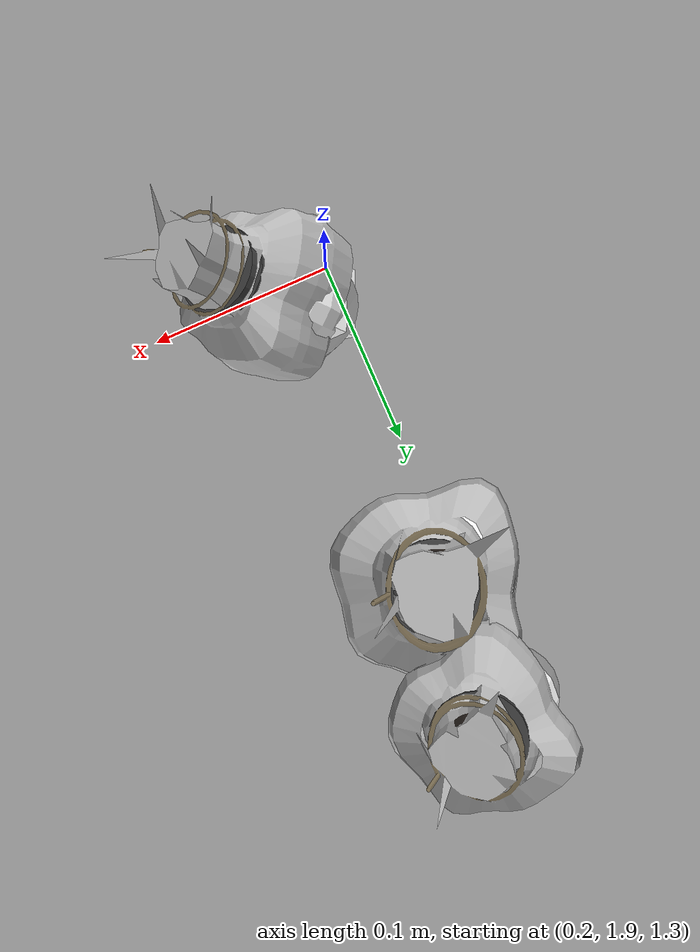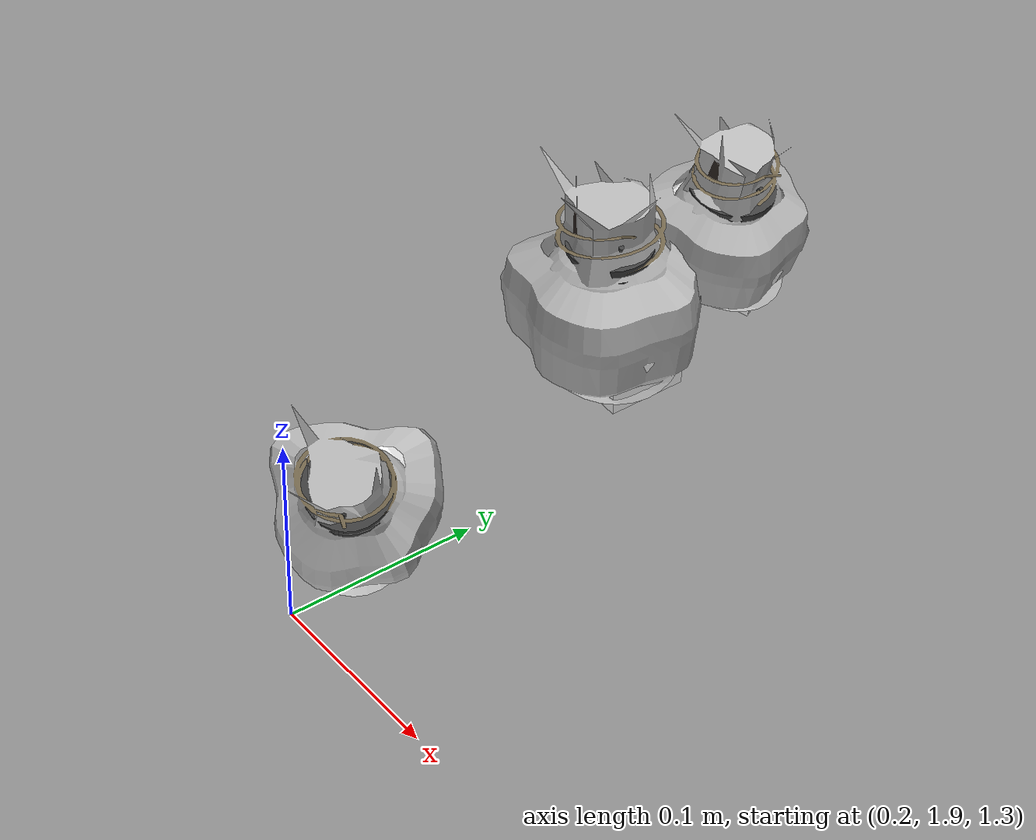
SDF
<sdf version="1.11">
 <world name="peach_orchard">
  <model name="ground">
   <static>true</static>
   <link name="link">
    <visual name="soil">
     <geometry><plane><normal>0 0 1</normal><size>32 22</size></plane></geometry>
     <material>
      <ambient>1 1 1 1</ambient>
      <diffuse>1 1 1 1</diffuse>
      <specular>0.1 0.1 0.1 1</specular>
      <pbr>
       <metal>
        <albedo_map>textures/soil_albedo.png</albedo_map>
        <normal_map type="tangent">textures/soil_normal.png</normal_map>
        <roughness>0.95</roughness>
        <metalness>0</metalness>
       </metal>
      </pbr>
     </material>
    </visual>
    <collision name="c_soil">
     <geometry><plane><normal>0 0 1</normal><size>32 22</size></plane></geometry>
    </collision>
   </link>
  </model>
  <model name="peach_tree_r2_t4_03">
   <pose>0.22 2.06523 1.38213 0 0.0262122 -0.358318</pose>
   <static>true</static>
   <link name="bag">
    <visual name="bag_mesh">
     <pose>0 0 0.0473034 0 0 -0</pose>
     <geometry>
      <mesh><uri>model://peach_sim/meshes/bagged_peach.glb</uri><scale>1.05412 1.30614 1.07508</scale></mesh>
     </geometry>
    </visual>
    <visual name="body">
     <pose>0 0 0.0293034 0 0 0</pose>
     <geometry><ellipsoid><radii>0.0395294 0.0339596 0.0316477</radii></ellipsoid></geometry>
     <material>
      <ambient>1 1 1 1</ambient>
      <diffuse>1 1 1 1</diffuse>
      <specular>0.1 0.1 0.1 1</specular>
      <pbr>
       <metal>
        <albedo_map>textures/paper_bag_albedo.png</albedo_map>
        <normal_map type="tangent">textures/paper_bag_normal.png</normal_map>
        <roughness>0.72</roughness>
        <metalness>0</metalness>
       </metal>
      </pbr>
     </material>
    </visual>
    <visual name="bottom_fold">
     <pose>0 0 0.012 0 0 0.35</pose>
     <geometry><box><size>0.0612705 0.0390536 0.022</size></box></geometry>
     <material>
      <ambient>1 1 1 1</ambient>
      <diffuse>1 1 1 1</diffuse>
      <specular>0.1 0.1 0.1 1</specular>
      <pbr>
       <metal>
        <albedo_map>textures/paper_bag_albedo.png</albedo_map>
        <normal_map type="tangent">textures/paper_bag_normal.png</normal_map>
        <roughness>0.8</roughness>
        <metalness>0</metalness>
       </metal>
      </pbr>
     </material>
    </visual>
    <visual name="fruit">
     <pose>0 0 0.0215119 0 0 0</pose>
     <geometry><sphere><radius>0.0286124</radius></sphere></geometry>
     <material>
      <ambient>1 1 1 1</ambient>
      <diffuse>1 1 1 1</diffuse>
      <specular>0.1 0.1 0.1 1</specular>
      <pbr>
       <metal>
        <albedo_map>textures/fruit_skin_albedo.png</albedo_map>
        <normal_map type="tangent">textures/fruit_skin_normal.png</normal_map>
        <roughness>0.55</roughness>
        <metalness>0</metalness>
       </metal>
      </pbr>
     </material>
    </visual>
    <visual name="neck">
     <pose>0 0 0.0676069 0 0 0</pose>
     <geometry><cylinder><radius>0.013</radius><length>0.018</length></cylinder></geometry>
     <material>
      <ambient>1 1 1 1</ambient>
      <diffuse>1 1 1 1</diffuse>
      <specular>0.1 0.1 0.1 1</specular>
      <pbr>
       <metal>
        <albedo_map>textures/paper_bag_albedo.png</albedo_map>
        <normal_map type="tangent">textures/paper_bag_normal.png</normal_map>
        <roughness>0.75</roughness>
        <metalness>0</metalness>
       </metal>
      </pbr>
     </material>
    </visual>
    <visual name="gather">
     <pose>0 0 0.0486069 0 0 0</pose>
     <geometry><cylinder><radius>0.019</radius><length>0.02</length></cylinder></geometry>
     <material>
      <ambient>1 1 1 1</ambient>
      <diffuse>1 1 1 1</diffuse>
      <specular>0.1 0.1 0.1 1</specular>
      <pbr>
       <metal>
        <albedo_map>textures/paper_bag_albedo.png</albedo_map>
        <normal_map type="tangent">textures/paper_bag_normal.png</normal_map>
        <roughness>0.8</roughness>
        <metalness>0</metalness>
       </metal>
      </pbr>
     </material>
    </visual>
    <visual name="inner_paper">
     <pose>0 0 0.0726069 0 0 0</pose>
     <geometry><cylinder><radius>0.01</radius><length>0.008</length></cylinder></geometry>
     <material>
      <ambient>0.180392 0.14902 0.133333 1</ambient>
      <diffuse>0.180392 0.14902 0.133333 1</diffuse>
      <specular>0.1 0.1 0.1 1</specular>
     </material>
    </visual>
    <visual name="wire_0">
     <pose>0 0 0.0626069 0 0 0</pose>
     <geometry><cylinder><radius>0.0205</radius><length>0.0035</length></cylinder></geometry>
     <material>
      <ambient>0.25 0.25 0.25 1</ambient>
      <diffuse>0.25 0.25 0.25 1</diffuse>
      <specular>0.1 0.1 0.1 1</specular>
     </material>
    </visual>
    <visual name="wire_1">
     <pose>0 0 0.0696069 0 0 0</pose>
     <geometry><cylinder><radius>0.0205</radius><length>0.0035</length></cylinder></geometry>
     <material>
      <ambient>0.25 0.25 0.25 1</ambient>
      <diffuse>0.25 0.25 0.25 1</diffuse>
      <specular>0.1 0.1 0.1 1</specular>
     </material>
    </visual>
    <visual name="wire_tail">
     <pose>0.01 0 0.0706069 0 0.521618 0</pose>
     <geometry><cylinder><radius>0.0012</radius><length>0.026</length></cylinder></geometry>
     <material>
      <ambient>0.25 0.25 0.25 1</ambient>
      <diffuse>0.25 0.25 0.25 1</diffuse>
      <specular>0.1 0.1 0.1 1</specular>
     </material>
    </visual>
    <collision name="c_body">
     <pose>0 0 0.0293034 0 0 0</pose>
     <geometry><cylinder><radius>0.0395294</radius><length>0.0586069</length></cylinder></geometry>
    </collision>
   </link>
  </model>
  <model name="peach_tree_r2_t4_04">
   <pose>0.22 2.12564 1.4082 0 0.194554 0.116089</pose>
   <static>true</static>
   <link name="bag">
    <visual name="bag_mesh">
     <pose>0 0 0.0403766 0 0 0</pose>
     <geometry>
      <mesh><uri>model://peach_sim/meshes/bagged_peach.glb</uri><scale>0.912053 1.12733 0.917651</scale></mesh>
     </geometry>
    </visual>
    <visual name="body">
     <pose>0 0 0.0223766 0 0 0</pose>
     <geometry><ellipsoid><radii>0.034202 0.0293105 0.0241668</radii></ellipsoid></geometry>
     <material>
      <ambient>1 1 1 1</ambient>
      <diffuse>1 1 1 1</diffuse>
      <specular>0.1 0.1 0.1 1</specular>
      <pbr>
       <metal>
        <albedo_map>textures/paper_bag_albedo.png</albedo_map>
        <normal_map type="tangent">textures/paper_bag_normal.png</normal_map>
        <roughness>0.72</roughness>
        <metalness>0</metalness>
       </metal>
      </pbr>
     </material>
    </visual>
    <visual name="bottom_fold">
     <pose>0 0 0.012 0 0 0.35</pose>
     <geometry><box><size>0.0530131 0.0337071 0.022</size></box></geometry>
     <material>
      <ambient>1 1 1 1</ambient>
      <diffuse>1 1 1 1</diffuse>
      <specular>0.1 0.1 0.1 1</specular>
      <pbr>
       <metal>
        <albedo_map>textures/paper_bag_albedo.png</albedo_map>
        <normal_map type="tangent">textures/paper_bag_normal.png</normal_map>
        <roughness>0.8</roughness>
        <metalness>0</metalness>
       </metal>
      </pbr>
     </material>
    </visual>
    <visual name="fruit">
     <pose>0 0 0.0200739 0 0 0</pose>
     <geometry><sphere><radius>0.0271169</radius></sphere></geometry>
     <material>
      <ambient>1 1 1 1</ambient>
      <diffuse>1 1 1 1</diffuse>
      <specular>0.1 0.1 0.1 1</specular>
      <pbr>
       <metal>
        <albedo_map>textures/fruit_skin_albedo.png</albedo_map>
        <normal_map type="tangent">textures/fruit_skin_normal.png</normal_map>
        <roughness>0.55</roughness>
        <metalness>0</metalness>
       </metal>
      </pbr>
     </material>
    </visual>
    <visual name="neck">
     <pose>0 0 0.0537533 0 0 0</pose>
     <geometry><cylinder><radius>0.013</radius><length>0.018</length></cylinder></geometry>
     <material>
      <ambient>1 1 1 1</ambient>
      <diffuse>1 1 1 1</diffuse>
      <specular>0.1 0.1 0.1 1</specular>
      <pbr>
       <metal>
        <albedo_map>textures/paper_bag_albedo.png</albedo_map>
        <normal_map type="tangent">textures/paper_bag_normal.png</normal_map>
        <roughness>0.75</roughness>
        <metalness>0</metalness>
       </metal>
      </pbr>
     </material>
    </visual>
    <visual name="gather">
     <pose>0 0 0.0347533 0 0 0</pose>
     <geometry><cylinder><radius>0.019</radius><length>0.02</length></cylinder></geometry>
     <material>
      <ambient>1 1 1 1</ambient>
      <diffuse>1 1 1 1</diffuse>
      <specular>0.1 0.1 0.1 1</specular>
      <pbr>
       <metal>
        <albedo_map>textures/paper_bag_albedo.png</albedo_map>
        <normal_map type="tangent">textures/paper_bag_normal.png</normal_map>
        <roughness>0.8</roughness>
        <metalness>0</metalness>
       </metal>
      </pbr>
     </material>
    </visual>
    <visual name="inner_paper">
     <pose>0 0 0.0587533 0 0 0</pose>
     <geometry><cylinder><radius>0.01</radius><length>0.008</length></cylinder></geometry>
     <material>
      <ambient>0.180392 0.14902 0.133333 1</ambient>
      <diffuse>0.180392 0.14902 0.133333 1</diffuse>
      <specular>0.1 0.1 0.1 1</specular>
     </material>
    </visual>
    <visual name="wire_0">
     <pose>0 0 0.0487533 0 0 0</pose>
     <geometry><cylinder><radius>0.0205</radius><length>0.0035</length></cylinder></geometry>
     <material>
      <ambient>0.25 0.25 0.25 1</ambient>
      <diffuse>0.25 0.25 0.25 1</diffuse>
      <specular>0.1 0.1 0.1 1</specular>
     </material>
    </visual>
    <visual name="wire_1">
     <pose>0 0 0.0557533 0 0 0</pose>
     <geometry><cylinder><radius>0.0205</radius><length>0.0035</length></cylinder></geometry>
     <material>
      <ambient>0.25 0.25 0.25 1</ambient>
      <diffuse>0.25 0.25 0.25 1</diffuse>
      <specular>0.1 0.1 0.1 1</specular>
     </material>
    </visual>
    <visual name="wire_tail">
     <pose>0.01 0 0.0567533 0 0.521618 0</pose>
     <geometry><cylinder><radius>0.0012</radius><length>0.026</length></cylinder></geometry>
     <material>
      <ambient>0.25 0.25 0.25 1</ambient>
      <diffuse>0.25 0.25 0.25 1</diffuse>
      <specular>0.1 0.1 0.1 1</specular>
     </material>
    </visual>
    <collision name="c_body">
     <pose>0 0 0.0223766 0 0 0</pose>
     <geometry><cylinder><radius>0.034202</radius><length>0.0447533</length></cylinder></geometry>
    </collision>
   </link>
  </model>
  <model name="peach_tree_r2_t4_05">
   <pose>0.22 1.92696 1.35726 0 0.631209 -0.70417</pose>
   <static>true</static>
   <link name="bag">
    <visual name="bag_mesh">
     <pose>0 0 0.0475166 0 0 -0</pose>
     <geometry>
      <mesh><uri>model://peach_sim/meshes/bagged_peach.glb</uri><scale>0.943658 1.12669 1.07992</scale></mesh>
     </geometry>
    </visual>
    <visual name="body">
     <pose>0 0 0.0295166 0 0 0</pose>
     <geometry><ellipsoid><radii>0.0353872 0.0292941 0.0318779</radii></ellipsoid></geometry>
     <material>
      <ambient>1 1 1 1</ambient>
      <diffuse>1 1 1 1</diffuse>
      <specular>0.1 0.1 0.1 1</specular>
      <pbr>
       <metal>
        <albedo_map>textures/paper_bag_albedo.png</albedo_map>
        <normal_map type="tangent">textures/paper_bag_normal.png</normal_map>
        <roughness>0.72</roughness>
        <metalness>0</metalness>
       </metal>
      </pbr>
     </material>
    </visual>
    <visual name="bottom_fold">
     <pose>0 0 0.012 0 0 0.35</pose>
     <geometry><box><size>0.0548501 0.0336882 0.022</size></box></geometry>
     <material>
      <ambient>1 1 1 1</ambient>
      <diffuse>1 1 1 1</diffuse>
      <specular>0.1 0.1 0.1 1</specular>
      <pbr>
       <metal>
        <albedo_map>textures/paper_bag_albedo.png</albedo_map>
        <normal_map type="tangent">textures/paper_bag_normal.png</normal_map>
        <roughness>0.8</roughness>
        <metalness>0</metalness>
       </metal>
      </pbr>
     </material>
    </visual>
    <visual name="fruit">
     <pose>0 0 0.0186138 0 0 0</pose>
     <geometry><sphere><radius>0.0255983</radius></sphere></geometry>
     <material>
      <ambient>1 1 1 1</ambient>
      <diffuse>1 1 1 1</diffuse>
      <specular>0.1 0.1 0.1 1</specular>
      <pbr>
       <metal>
        <albedo_map>textures/fruit_skin_albedo.png</albedo_map>
        <normal_map type="tangent">textures/fruit_skin_normal.png</normal_map>
        <roughness>0.55</roughness>
        <metalness>0</metalness>
       </metal>
      </pbr>
     </material>
    </visual>
    <visual name="neck">
     <pose>0 0 0.0680332 0 0 0</pose>
     <geometry><cylinder><radius>0.013</radius><length>0.018</length></cylinder></geometry>
     <material>
      <ambient>1 1 1 1</ambient>
      <diffuse>1 1 1 1</diffuse>
      <specular>0.1 0.1 0.1 1</specular>
      <pbr>
       <metal>
        <albedo_map>textures/paper_bag_albedo.png</albedo_map>
        <normal_map type="tangent">textures/paper_bag_normal.png</normal_map>
        <roughness>0.75</roughness>
        <metalness>0</metalness>
       </metal>
      </pbr>
     </material>
    </visual>
    <visual name="gather">
     <pose>0 0 0.0490332 0 0 0</pose>
     <geometry><cylinder><radius>0.019</radius><length>0.02</length></cylinder></geometry>
     <material>
      <ambient>1 1 1 1</ambient>
      <diffuse>1 1 1 1</diffuse>
      <specular>0.1 0.1 0.1 1</specular>
      <pbr>
       <metal>
        <albedo_map>textures/paper_bag_albedo.png</albedo_map>
        <normal_map type="tangent">textures/paper_bag_normal.png</normal_map>
        <roughness>0.8</roughness>
        <metalness>0</metalness>
       </metal>
      </pbr>
     </material>
    </visual>
    <visual name="inner_paper">
     <pose>0 0 0.0730332 0 0 0</pose>
     <geometry><cylinder><radius>0.01</radius><length>0.008</length></cylinder></geometry>
     <material>
      <ambient>0.180392 0.14902 0.133333 1</ambient>
      <diffuse>0.180392 0.14902 0.133333 1</diffuse>
      <specular>0.1 0.1 0.1 1</specular>
     </material>
    </visual>
    <visual name="wire_0">
     <pose>0 0 0.0630332 0 0 0</pose>
     <geometry><cylinder><radius>0.0205</radius><length>0.0035</length></cylinder></geometry>
     <material>
      <ambient>0.25 0.25 0.25 1</ambient>
      <diffuse>0.25 0.25 0.25 1</diffuse>
      <specular>0.1 0.1 0.1 1</specular>
     </material>
    </visual>
    <visual name="wire_1">
     <pose>0 0 0.0700332 0 0 0</pose>
     <geometry><cylinder><radius>0.0205</radius><length>0.0035</length></cylinder></geometry>
     <material>
      <ambient>0.25 0.25 0.25 1</ambient>
      <diffuse>0.25 0.25 0.25 1</diffuse>
      <specular>0.1 0.1 0.1 1</specular>
     </material>
    </visual>
    <visual name="wire_tail">
     <pose>0.01 0 0.0710332 0 0.521618 0</pose>
     <geometry><cylinder><radius>0.0012</radius><length>0.026</length></cylinder></geometry>
     <material>
      <ambient>0.25 0.25 0.25 1</ambient>
      <diffuse>0.25 0.25 0.25 1</diffuse>
      <specular>0.1 0.1 0.1 1</specular>
     </material>
    </visual>
    <collision name="c_body">
     <pose>0 0 0.0295166 0 0 0</pose>
     <geometry><cylinder><radius>0.0353872</radius><length>0.0590332</length></cylinder></geometry>
    </collision>
   </link>
  </model>
 </world>
</sdf>
